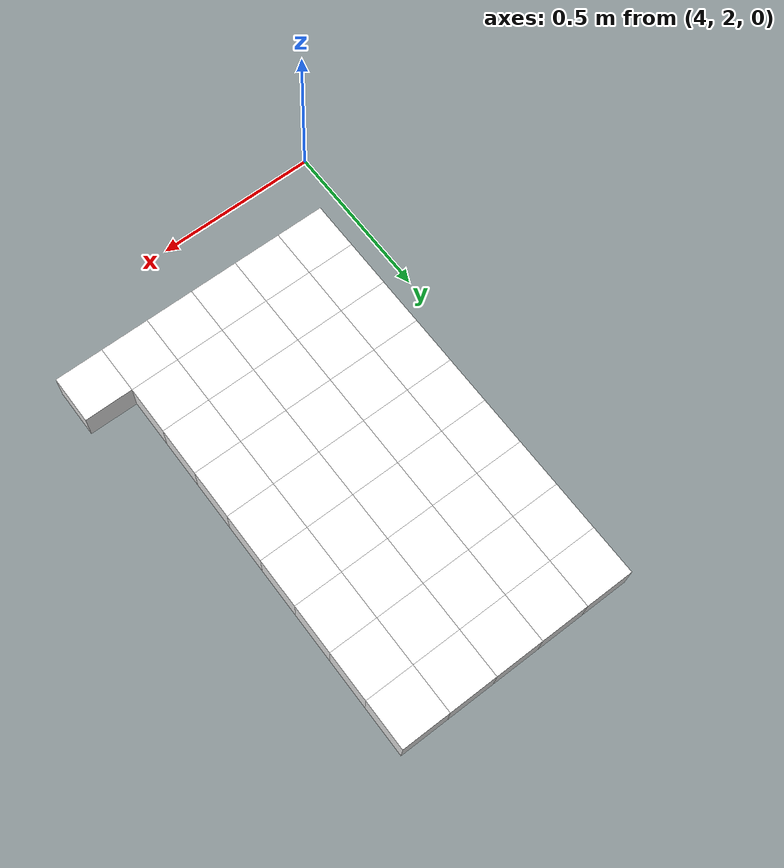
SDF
<sdf version="1.7">
 <world name="default">
  <include><uri>model://sun</uri></include>
  <model name="static_environment">
   <static>true</static>
   <link name="region_1021">
    <pose>4.15 2.2499999999999996 0.0 0.0 0.0 0.0</pose>
    <collision name="region_1021_collision">
     <geometry><box><size>0.15 0.15 0.1</size></box></geometry>
     <surface><friction><ode><mu>1.0</mu><mu2>1.0</mu2></ode></friction></surface>
    </collision>
    <visual name="region_1021_visual">
     <geometry><box><size>0.15 0.15 0.1</size></box></geometry>
     <material><ambient>1.0 1.0 1.0 1.0</ambient><diffuse>1.0 1.0 1.0 1.0</diffuse></material>
    </visual>
   </link>
   <link name="region_1022">
    <pose>4.300000000000001 2.2499999999999996 0.0 0.0 0.0 0.0</pose>
    <collision name="region_1022_collision">
     <geometry><box><size>0.15 0.15 0.1</size></box></geometry>
     <surface><friction><ode><mu>1.0</mu><mu2>1.0</mu2></ode></friction></surface>
    </collision>
    <visual name="region_1022_visual">
     <geometry><box><size>0.15 0.15 0.1</size></box></geometry>
     <material><ambient>1.0 1.0 1.0 1.0</ambient><diffuse>1.0 1.0 1.0 1.0</diffuse></material>
    </visual>
   </link>
   <link name="region_1023">
    <pose>4.450000000000001 2.2499999999999996 0.0 0.0 0.0 0.0</pose>
    <collision name="region_1023_collision">
     <geometry><box><size>0.15 0.15 0.1</size></box></geometry>
     <surface><friction><ode><mu>1.0</mu><mu2>1.0</mu2></ode></friction></surface>
    </collision>
    <visual name="region_1023_visual">
     <geometry><box><size>0.15 0.15 0.1</size></box></geometry>
     <material><ambient>1.0 1.0 1.0 1.0</ambient><diffuse>1.0 1.0 1.0 1.0</diffuse></material>
    </visual>
   </link>
   <link name="region_1024">
    <pose>4.600000000000001 2.2499999999999996 0.0 0.0 0.0 0.0</pose>
    <collision name="region_1024_collision">
     <geometry><box><size>0.15 0.15 0.1</size></box></geometry>
     <surface><friction><ode><mu>1.0</mu><mu2>1.0</mu2></ode></friction></surface>
    </collision>
    <visual name="region_1024_visual">
     <geometry><box><size>0.15 0.15 0.1</size></box></geometry>
     <material><ambient>1.0 1.0 1.0 1.0</ambient><diffuse>1.0 1.0 1.0 1.0</diffuse></material>
    </visual>
   </link>
   <link name="region_1025">
    <pose>4.750000000000002 2.2499999999999996 0.0 0.0 0.0 0.0</pose>
    <collision name="region_1025_collision">
     <geometry><box><size>0.15 0.15 0.1</size></box></geometry>
     <surface><friction><ode><mu>1.0</mu><mu2>1.0</mu2></ode></friction></surface>
    </collision>
    <visual name="region_1025_visual">
     <geometry><box><size>0.15 0.15 0.1</size></box></geometry>
     <material><ambient>1.0 1.0 1.0 1.0</ambient><diffuse>1.0 1.0 1.0 1.0</diffuse></material>
    </visual>
   </link>
   <link name="region_1026">
    <pose>4.900000000000002 2.2499999999999996 0.0 0.0 0.0 0.0</pose>
    <collision name="region_1026_collision">
     <geometry><box><size>0.15 0.15 0.1</size></box></geometry>
     <surface><friction><ode><mu>1.0</mu><mu2>1.0</mu2></ode></friction></surface>
    </collision>
    <visual name="region_1026_visual">
     <geometry><box><size>0.15 0.15 0.1</size></box></geometry>
     <material><ambient>1.0 1.0 1.0 1.0</ambient><diffuse>1.0 1.0 1.0 1.0</diffuse></material>
    </visual>
   </link>
   <link name="region_1041">
    <pose>4.15 2.3999999999999995 0.0 0.0 0.0 0.0</pose>
    <collision name="region_1041_collision">
     <geometry><box><size>0.15 0.15 0.1</size></box></geometry>
     <surface><friction><ode><mu>1.0</mu><mu2>1.0</mu2></ode></friction></surface>
    </collision>
    <visual name="region_1041_visual">
     <geometry><box><size>0.15 0.15 0.1</size></box></geometry>
     <material><ambient>1.0 1.0 1.0 1.0</ambient><diffuse>1.0 1.0 1.0 1.0</diffuse></material>
    </visual>
   </link>
   <link name="region_1042">
    <pose>4.300000000000001 2.3999999999999995 0.0 0.0 0.0 0.0</pose>
    <collision name="region_1042_collision">
     <geometry><box><size>0.15 0.15 0.1</size></box></geometry>
     <surface><friction><ode><mu>1.0</mu><mu2>1.0</mu2></ode></friction></surface>
    </collision>
    <visual name="region_1042_visual">
     <geometry><box><size>0.15 0.15 0.1</size></box></geometry>
     <material><ambient>1.0 1.0 1.0 1.0</ambient><diffuse>1.0 1.0 1.0 1.0</diffuse></material>
    </visual>
   </link>
   <link name="region_1043">
    <pose>4.450000000000001 2.3999999999999995 0.0 0.0 0.0 0.0</pose>
    <collision name="region_1043_collision">
     <geometry><box><size>0.15 0.15 0.1</size></box></geometry>
     <surface><friction><ode><mu>1.0</mu><mu2>1.0</mu2></ode></friction></surface>
    </collision>
    <visual name="region_1043_visual">
     <geometry><box><size>0.15 0.15 0.1</size></box></geometry>
     <material><ambient>1.0 1.0 1.0 1.0</ambient><diffuse>1.0 1.0 1.0 1.0</diffuse></material>
    </visual>
   </link>
   <link name="region_1044">
    <pose>4.600000000000001 2.3999999999999995 0.0 0.0 0.0 0.0</pose>
    <collision name="region_1044_collision">
     <geometry><box><size>0.15 0.15 0.1</size></box></geometry>
     <surface><friction><ode><mu>1.0</mu><mu2>1.0</mu2></ode></friction></surface>
    </collision>
    <visual name="region_1044_visual">
     <geometry><box><size>0.15 0.15 0.1</size></box></geometry>
     <material><ambient>1.0 1.0 1.0 1.0</ambient><diffuse>1.0 1.0 1.0 1.0</diffuse></material>
    </visual>
   </link>
   <link name="region_1045">
    <pose>4.750000000000002 2.3999999999999995 0.0 0.0 0.0 0.0</pose>
    <collision name="region_1045_collision">
     <geometry><box><size>0.15 0.15 0.1</size></box></geometry>
     <surface><friction><ode><mu>1.0</mu><mu2>1.0</mu2></ode></friction></surface>
    </collision>
    <visual name="region_1045_visual">
     <geometry><box><size>0.15 0.15 0.1</size></box></geometry>
     <material><ambient>1.0 1.0 1.0 1.0</ambient><diffuse>1.0 1.0 1.0 1.0</diffuse></material>
    </visual>
   </link>
   <link name="region_1061">
    <pose>4.15 2.5499999999999994 0.0 0.0 0.0 0.0</pose>
    <collision name="region_1061_collision">
     <geometry><box><size>0.15 0.15 0.1</size></box></geometry>
     <surface><friction><ode><mu>1.0</mu><mu2>1.0</mu2></ode></friction></surface>
    </collision>
    <visual name="region_1061_visual">
     <geometry><box><size>0.15 0.15 0.1</size></box></geometry>
     <material><ambient>1.0 1.0 1.0 1.0</ambient><diffuse>1.0 1.0 1.0 1.0</diffuse></material>
    </visual>
   </link>
   <link name="region_1062">
    <pose>4.300000000000001 2.5499999999999994 0.0 0.0 0.0 0.0</pose>
    <collision name="region_1062_collision">
     <geometry><box><size>0.15 0.15 0.1</size></box></geometry>
     <surface><friction><ode><mu>1.0</mu><mu2>1.0</mu2></ode></friction></surface>
    </collision>
    <visual name="region_1062_visual">
     <geometry><box><size>0.15 0.15 0.1</size></box></geometry>
     <material><ambient>1.0 1.0 1.0 1.0</ambient><diffuse>1.0 1.0 1.0 1.0</diffuse></material>
    </visual>
   </link>
   <link name="region_1063">
    <pose>4.450000000000001 2.5499999999999994 0.0 0.0 0.0 0.0</pose>
    <collision name="region_1063_collision">
     <geometry><box><size>0.15 0.15 0.1</size></box></geometry>
     <surface><friction><ode><mu>1.0</mu><mu2>1.0</mu2></ode></friction></surface>
    </collision>
    <visual name="region_1063_visual">
     <geometry><box><size>0.15 0.15 0.1</size></box></geometry>
     <material><ambient>1.0 1.0 1.0 1.0</ambient><diffuse>1.0 1.0 1.0 1.0</diffuse></material>
    </visual>
   </link>
   <link name="region_1064">
    <pose>4.600000000000001 2.5499999999999994 0.0 0.0 0.0 0.0</pose>
    <collision name="region_1064_collision">
     <geometry><box><size>0.15 0.15 0.1</size></box></geometry>
     <surface><friction><ode><mu>1.0</mu><mu2>1.0</mu2></ode></friction></surface>
    </collision>
    <visual name="region_1064_visual">
     <geometry><box><size>0.15 0.15 0.1</size></box></geometry>
     <material><ambient>1.0 1.0 1.0 1.0</ambient><diffuse>1.0 1.0 1.0 1.0</diffuse></material>
    </visual>
   </link>
   <link name="region_1065">
    <pose>4.750000000000002 2.5499999999999994 0.0 0.0 0.0 0.0</pose>
    <collision name="region_1065_collision">
     <geometry><box><size>0.15 0.15 0.1</size></box></geometry>
     <surface><friction><ode><mu>1.0</mu><mu2>1.0</mu2></ode></friction></surface>
    </collision>
    <visual name="region_1065_visual">
     <geometry><box><size>0.15 0.15 0.1</size></box></geometry>
     <material><ambient>1.0 1.0 1.0 1.0</ambient><diffuse>1.0 1.0 1.0 1.0</diffuse></material>
    </visual>
   </link>
   <link name="region_1081">
    <pose>4.15 2.6999999999999997 0.0 0.0 0.0 0.0</pose>
    <collision name="region_1081_collision">
     <geometry><box><size>0.15 0.15 0.1</size></box></geometry>
     <surface><friction><ode><mu>1.0</mu><mu2>1.0</mu2></ode></friction></surface>
    </collision>
    <visual name="region_1081_visual">
     <geometry><box><size>0.15 0.15 0.1</size></box></geometry>
     <material><ambient>1.0 1.0 1.0 1.0</ambient><diffuse>1.0 1.0 1.0 1.0</diffuse></material>
    </visual>
   </link>
   <link name="region_1082">
    <pose>4.300000000000001 2.6999999999999997 0.0 0.0 0.0 0.0</pose>
    <collision name="region_1082_collision">
     <geometry><box><size>0.15 0.15 0.1</size></box></geometry>
     <surface><friction><ode><mu>1.0</mu><mu2>1.0</mu2></ode></friction></surface>
    </collision>
    <visual name="region_1082_visual">
     <geometry><box><size>0.15 0.15 0.1</size></box></geometry>
     <material><ambient>1.0 1.0 1.0 1.0</ambient><diffuse>1.0 1.0 1.0 1.0</diffuse></material>
    </visual>
   </link>
   <link name="region_1083">
    <pose>4.450000000000001 2.6999999999999997 0.0 0.0 0.0 0.0</pose>
    <collision name="region_1083_collision">
     <geometry><box><size>0.15 0.15 0.1</size></box></geometry>
     <surface><friction><ode><mu>1.0</mu><mu2>1.0</mu2></ode></friction></surface>
    </collision>
    <visual name="region_1083_visual">
     <geometry><box><size>0.15 0.15 0.1</size></box></geometry>
     <material><ambient>1.0 1.0 1.0 1.0</ambient><diffuse>1.0 1.0 1.0 1.0</diffuse></material>
    </visual>
   </link>
   <link name="region_1084">
    <pose>4.600000000000001 2.6999999999999997 0.0 0.0 0.0 0.0</pose>
    <collision name="region_1084_collision">
     <geometry><box><size>0.15 0.15 0.1</size></box></geometry>
     <surface><friction><ode><mu>1.0</mu><mu2>1.0</mu2></ode></friction></surface>
    </collision>
    <visual name="region_1084_visual">
     <geometry><box><size>0.15 0.15 0.1</size></box></geometry>
     <material><ambient>1.0 1.0 1.0 1.0</ambient><diffuse>1.0 1.0 1.0 1.0</diffuse></material>
    </visual>
   </link>
   <link name="region_1085">
    <pose>4.750000000000002 2.6999999999999997 0.0 0.0 0.0 0.0</pose>
    <collision name="region_1085_collision">
     <geometry><box><size>0.15 0.15 0.1</size></box></geometry>
     <surface><friction><ode><mu>1.0</mu><mu2>1.0</mu2></ode></friction></surface>
    </collision>
    <visual name="region_1085_visual">
     <geometry><box><size>0.15 0.15 0.1</size></box></geometry>
     <material><ambient>1.0 1.0 1.0 1.0</ambient><diffuse>1.0 1.0 1.0 1.0</diffuse></material>
    </visual>
   </link>
   <link name="region_1101">
    <pose>4.15 2.8499999999999996 0.0 0.0 0.0 0.0</pose>
    <collision name="region_1101_collision">
     <geometry><box><size>0.15 0.15 0.1</size></box></geometry>
     <surface><friction><ode><mu>1.0</mu><mu2>1.0</mu2></ode></friction></surface>
    </collision>
    <visual name="region_1101_visual">
     <geometry><box><size>0.15 0.15 0.1</size></box></geometry>
     <material><ambient>1.0 1.0 1.0 1.0</ambient><diffuse>1.0 1.0 1.0 1.0</diffuse></material>
    </visual>
   </link>
   <link name="region_1102">
    <pose>4.300000000000001 2.8499999999999996 0.0 0.0 0.0 0.0</pose>
    <collision name="region_1102_collision">
     <geometry><box><size>0.15 0.15 0.1</size></box></geometry>
     <surface><friction><ode><mu>1.0</mu><mu2>1.0</mu2></ode></friction></surface>
    </collision>
    <visual name="region_1102_visual">
     <geometry><box><size>0.15 0.15 0.1</size></box></geometry>
     <material><ambient>1.0 1.0 1.0 1.0</ambient><diffuse>1.0 1.0 1.0 1.0</diffuse></material>
    </visual>
   </link>
   <link name="region_1103">
    <pose>4.450000000000001 2.8499999999999996 0.0 0.0 0.0 0.0</pose>
    <collision name="region_1103_collision">
     <geometry><box><size>0.15 0.15 0.1</size></box></geometry>
     <surface><friction><ode><mu>1.0</mu><mu2>1.0</mu2></ode></friction></surface>
    </collision>
    <visual name="region_1103_visual">
     <geometry><box><size>0.15 0.15 0.1</size></box></geometry>
     <material><ambient>1.0 1.0 1.0 1.0</ambient><diffuse>1.0 1.0 1.0 1.0</diffuse></material>
    </visual>
   </link>
   <link name="region_1104">
    <pose>4.600000000000001 2.8499999999999996 0.0 0.0 0.0 0.0</pose>
    <collision name="region_1104_collision">
     <geometry><box><size>0.15 0.15 0.1</size></box></geometry>
     <surface><friction><ode><mu>1.0</mu><mu2>1.0</mu2></ode></friction></surface>
    </collision>
    <visual name="region_1104_visual">
     <geometry><box><size>0.15 0.15 0.1</size></box></geometry>
     <material><ambient>1.0 1.0 1.0 1.0</ambient><diffuse>1.0 1.0 1.0 1.0</diffuse></material>
    </visual>
   </link>
   <link name="region_1105">
    <pose>4.750000000000002 2.8499999999999996 0.0 0.0 0.0 0.0</pose>
    <collision name="region_1105_collision">
     <geometry><box><size>0.15 0.15 0.1</size></box></geometry>
     <surface><friction><ode><mu>1.0</mu><mu2>1.0</mu2></ode></friction></surface>
    </collision>
    <visual name="region_1105_visual">
     <geometry><box><size>0.15 0.15 0.1</size></box></geometry>
     <material><ambient>1.0 1.0 1.0 1.0</ambient><diffuse>1.0 1.0 1.0 1.0</diffuse></material>
    </visual>
   </link>
   <link name="region_1121">
    <pose>4.15 2.9999999999999996 0.0 0.0 0.0 0.0</pose>
    <collision name="region_1121_collision">
     <geometry><box><size>0.15 0.15 0.1</size></box></geometry>
     <surface><friction><ode><mu>1.0</mu><mu2>1.0</mu2></ode></friction></surface>
    </collision>
    <visual name="region_1121_visual">
     <geometry><box><size>0.15 0.15 0.1</size></box></geometry>
     <material><ambient>1.0 1.0 1.0 1.0</ambient><diffuse>1.0 1.0 1.0 1.0</diffuse></material>
    </visual>
   </link>
   <link name="region_1122">
    <pose>4.300000000000001 2.9999999999999996 0.0 0.0 0.0 0.0</pose>
    <collision name="region_1122_collision">
     <geometry><box><size>0.15 0.15 0.1</size></box></geometry>
     <surface><friction><ode><mu>1.0</mu><mu2>1.0</mu2></ode></friction></surface>
    </collision>
    <visual name="region_1122_visual">
     <geometry><box><size>0.15 0.15 0.1</size></box></geometry>
     <material><ambient>1.0 1.0 1.0 1.0</ambient><diffuse>1.0 1.0 1.0 1.0</diffuse></material>
    </visual>
   </link>
   <link name="region_1123">
    <pose>4.450000000000001 2.9999999999999996 0.0 0.0 0.0 0.0</pose>
    <collision name="region_1123_collision">
     <geometry><box><size>0.15 0.15 0.1</size></box></geometry>
     <surface><friction><ode><mu>1.0</mu><mu2>1.0</mu2></ode></friction></surface>
    </collision>
    <visual name="region_1123_visual">
     <geometry><box><size>0.15 0.15 0.1</size></box></geometry>
     <material><ambient>1.0 1.0 1.0 1.0</ambient><diffuse>1.0 1.0 1.0 1.0</diffuse></material>
    </visual>
   </link>
   <link name="region_1124">
    <pose>4.600000000000001 2.9999999999999996 0.0 0.0 0.0 0.0</pose>
    <collision name="region_1124_collision">
     <geometry><box><size>0.15 0.15 0.1</size></box></geometry>
     <surface><friction><ode><mu>1.0</mu><mu2>1.0</mu2></ode></friction></surface>
    </collision>
    <visual name="region_1124_visual">
     <geometry><box><size>0.15 0.15 0.1</size></box></geometry>
     <material><ambient>1.0 1.0 1.0 1.0</ambient><diffuse>1.0 1.0 1.0 1.0</diffuse></material>
    </visual>
   </link>
   <link name="region_1125">
    <pose>4.750000000000002 2.9999999999999996 0.0 0.0 0.0 0.0</pose>
    <collision name="region_1125_collision">
     <geometry><box><size>0.15 0.15 0.1</size></box></geometry>
     <surface><friction><ode><mu>1.0</mu><mu2>1.0</mu2></ode></friction></surface>
    </collision>
    <visual name="region_1125_visual">
     <geometry><box><size>0.15 0.15 0.1</size></box></geometry>
     <material><ambient>1.0 1.0 1.0 1.0</ambient><diffuse>1.0 1.0 1.0 1.0</diffuse></material>
    </visual>
   </link>
   <link name="region_1141">
    <pose>4.15 3.1499999999999995 0.0 0.0 0.0 0.0</pose>
    <collision name="region_1141_collision">
     <geometry><box><size>0.15 0.15 0.1</size></box></geometry>
     <surface><friction><ode><mu>1.0</mu><mu2>1.0</mu2></ode></friction></surface>
    </collision>
    <visual name="region_1141_visual">
     <geometry><box><size>0.15 0.15 0.1</size></box></geometry>
     <material><ambient>1.0 1.0 1.0 1.0</ambient><diffuse>1.0 1.0 1.0 1.0</diffuse></material>
    </visual>
   </link>
   <link name="region_1142">
    <pose>4.300000000000001 3.1499999999999995 0.0 0.0 0.0 0.0</pose>
    <collision name="region_1142_collision">
     <geometry><box><size>0.15 0.15 0.1</size></box></geometry>
     <surface><friction><ode><mu>1.0</mu><mu2>1.0</mu2></ode></friction></surface>
    </collision>
    <visual name="region_1142_visual">
     <geometry><box><size>0.15 0.15 0.1</size></box></geometry>
     <material><ambient>1.0 1.0 1.0 1.0</ambient><diffuse>1.0 1.0 1.0 1.0</diffuse></material>
    </visual>
   </link>
   <link name="region_1143">
    <pose>4.450000000000001 3.1499999999999995 0.0 0.0 0.0 0.0</pose>
    <collision name="region_1143_collision">
     <geometry><box><size>0.15 0.15 0.1</size></box></geometry>
     <surface><friction><ode><mu>1.0</mu><mu2>1.0</mu2></ode></friction></surface>
    </collision>
    <visual name="region_1143_visual">
     <geometry><box><size>0.15 0.15 0.1</size></box></geometry>
     <material><ambient>1.0 1.0 1.0 1.0</ambient><diffuse>1.0 1.0 1.0 1.0</diffuse></material>
    </visual>
   </link>
   <link name="region_1144">
    <pose>4.600000000000001 3.1499999999999995 0.0 0.0 0.0 0.0</pose>
    <collision name="region_1144_collision">
     <geometry><box><size>0.15 0.15 0.1</size></box></geometry>
     <surface><friction><ode><mu>1.0</mu><mu2>1.0</mu2></ode></friction></surface>
    </collision>
    <visual name="region_1144_visual">
     <geometry><box><size>0.15 0.15 0.1</size></box></geometry>
     <material><ambient>1.0 1.0 1.0 1.0</ambient><diffuse>1.0 1.0 1.0 1.0</diffuse></material>
    </visual>
   </link>
   <link name="region_1145">
    <pose>4.750000000000002 3.1499999999999995 0.0 0.0 0.0 0.0</pose>
    <collision name="region_1145_collision">
     <geometry><box><size>0.15 0.15 0.1</size></box></geometry>
     <surface><friction><ode><mu>1.0</mu><mu2>1.0</mu2></ode></friction></surface>
    </collision>
    <visual name="region_1145_visual">
     <geometry><box><size>0.15 0.15 0.1</size></box></geometry>
     <material><ambient>1.0 1.0 1.0 1.0</ambient><diffuse>1.0 1.0 1.0 1.0</diffuse></material>
    </visual>
   </link>
   <link name="region_1161">
    <pose>4.15 3.2999999999999994 0.0 0.0 0.0 0.0</pose>
    <collision name="region_1161_collision">
     <geometry><box><size>0.15 0.15 0.1</size></box></geometry>
     <surface><friction><ode><mu>1.0</mu><mu2>1.0</mu2></ode></friction></surface>
    </collision>
    <visual name="region_1161_visual">
     <geometry><box><size>0.15 0.15 0.1</size></box></geometry>
     <material><ambient>1.0 1.0 1.0 1.0</ambient><diffuse>1.0 1.0 1.0 1.0</diffuse></material>
    </visual>
   </link>
   <link name="region_1162">
    <pose>4.300000000000001 3.2999999999999994 0.0 0.0 0.0 0.0</pose>
    <collision name="region_1162_collision">
     <geometry><box><size>0.15 0.15 0.1</size></box></geometry>
     <surface><friction><ode><mu>1.0</mu><mu2>1.0</mu2></ode></friction></surface>
    </collision>
    <visual name="region_1162_visual">
     <geometry><box><size>0.15 0.15 0.1</size></box></geometry>
     <material><ambient>1.0 1.0 1.0 1.0</ambient><diffuse>1.0 1.0 1.0 1.0</diffuse></material>
    </visual>
   </link>
   <link name="region_1163">
    <pose>4.450000000000001 3.2999999999999994 0.0 0.0 0.0 0.0</pose>
    <collision name="region_1163_collision">
     <geometry><box><size>0.15 0.15 0.1</size></box></geometry>
     <surface><friction><ode><mu>1.0</mu><mu2>1.0</mu2></ode></friction></surface>
    </collision>
    <visual name="region_1163_visual">
     <geometry><box><size>0.15 0.15 0.1</size></box></geometry>
     <material><ambient>1.0 1.0 1.0 1.0</ambient><diffuse>1.0 1.0 1.0 1.0</diffuse></material>
    </visual>
   </link>
   <link name="region_1164">
    <pose>4.600000000000001 3.2999999999999994 0.0 0.0 0.0 0.0</pose>
    <collision name="region_1164_collision">
     <geometry><box><size>0.15 0.15 0.1</size></box></geometry>
     <surface><friction><ode><mu>1.0</mu><mu2>1.0</mu2></ode></friction></surface>
    </collision>
    <visual name="region_1164_visual">
     <geometry><box><size>0.15 0.15 0.1</size></box></geometry>
     <material><ambient>1.0 1.0 1.0 1.0</ambient><diffuse>1.0 1.0 1.0 1.0</diffuse></material>
    </visual>
   </link>
   <link name="region_1165">
    <pose>4.750000000000002 3.2999999999999994 0.0 0.0 0.0 0.0</pose>
    <collision name="region_1165_collision">
     <geometry><box><size>0.15 0.15 0.1</size></box></geometry>
     <surface><friction><ode><mu>1.0</mu><mu2>1.0</mu2></ode></friction></surface>
    </collision>
    <visual name="region_1165_visual">
     <geometry><box><size>0.15 0.15 0.1</size></box></geometry>
     <material><ambient>1.0 1.0 1.0 1.0</ambient><diffuse>1.0 1.0 1.0 1.0</diffuse></material>
    </visual>
   </link>
   <link name="region_1181">
    <pose>4.15 3.4499999999999993 0.0 0.0 0.0 0.0</pose>
    <collision name="region_1181_collision">
     <geometry><box><size>0.15 0.15 0.1</size></box></geometry>
     <surface><friction><ode><mu>1.0</mu><mu2>1.0</mu2></ode></friction></surface>
    </collision>
    <visual name="region_1181_visual">
     <geometry><box><size>0.15 0.15 0.1</size></box></geometry>
     <material><ambient>1.0 1.0 1.0 1.0</ambient><diffuse>1.0 1.0 1.0 1.0</diffuse></material>
    </visual>
   </link>
   <link name="region_1182">
    <pose>4.300000000000001 3.4499999999999993 0.0 0.0 0.0 0.0</pose>
    <collision name="region_1182_collision">
     <geometry><box><size>0.15 0.15 0.1</size></box></geometry>
     <surface><friction><ode><mu>1.0</mu><mu2>1.0</mu2></ode></friction></surface>
    </collision>
    <visual name="region_1182_visual">
     <geometry><box><size>0.15 0.15 0.1</size></box></geometry>
     <material><ambient>1.0 1.0 1.0 1.0</ambient><diffuse>1.0 1.0 1.0 1.0</diffuse></material>
    </visual>
   </link>
   <link name="region_1183">
    <pose>4.450000000000001 3.4499999999999993 0.0 0.0 0.0 0.0</pose>
    <collision name="region_1183_collision">
     <geometry><box><size>0.15 0.15 0.1</size></box></geometry>
     <surface><friction><ode><mu>1.0</mu><mu2>1.0</mu2></ode></friction></surface>
    </collision>
    <visual name="region_1183_visual">
     <geometry><box><size>0.15 0.15 0.1</size></box></geometry>
     <material><ambient>1.0 1.0 1.0 1.0</ambient><diffuse>1.0 1.0 1.0 1.0</diffuse></material>
    </visual>
   </link>
   <link name="region_1184">
    <pose>4.600000000000001 3.4499999999999993 0.0 0.0 0.0 0.0</pose>
    <collision name="region_1184_collision">
     <geometry><box><size>0.15 0.15 0.1</size></box></geometry>
     <surface><friction><ode><mu>1.0</mu><mu2>1.0</mu2></ode></friction></surface>
    </collision>
    <visual name="region_1184_visual">
     <geometry><box><size>0.15 0.15 0.1</size></box></geometry>
     <material><ambient>1.0 1.0 1.0 1.0</ambient><diffuse>1.0 1.0 1.0 1.0</diffuse></material>
    </visual>
   </link>
   <link name="region_1185">
    <pose>4.750000000000002 3.4499999999999993 0.0 0.0 0.0 0.0</pose>
    <collision name="region_1185_collision">
     <geometry><box><size>0.15 0.15 0.1</size></box></geometry>
     <surface><friction><ode><mu>1.0</mu><mu2>1.0</mu2></ode></friction></surface>
    </collision>
    <visual name="region_1185_visual">
     <geometry><box><size>0.15 0.15 0.1</size></box></geometry>
     <material><ambient>1.0 1.0 1.0 1.0</ambient><diffuse>1.0 1.0 1.0 1.0</diffuse></material>
    </visual>
   </link>
  </model>
 </world>
</sdf>
